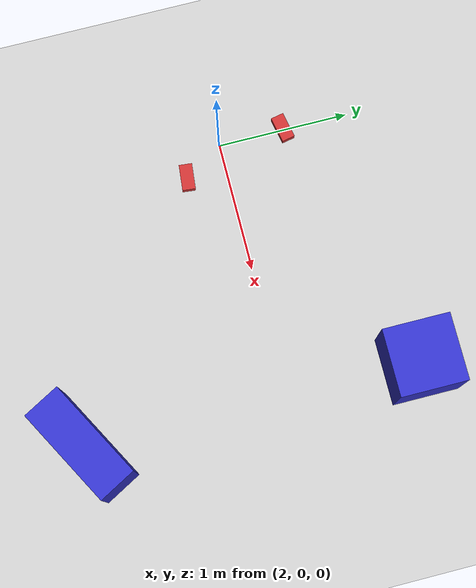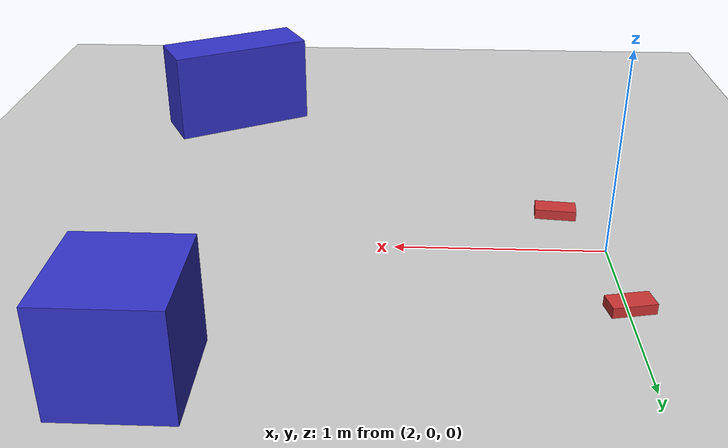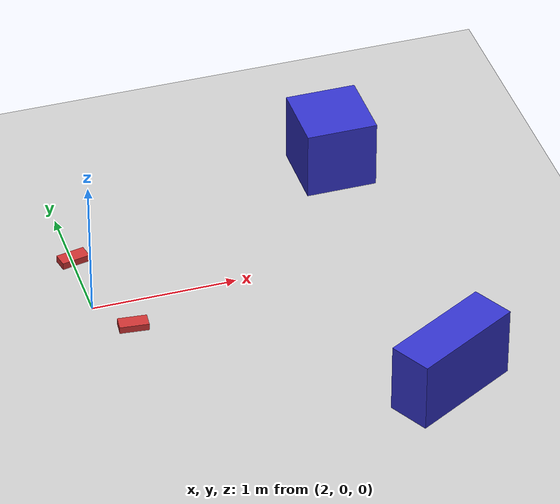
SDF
<sdf version="1.6">
 <world name="hexapod_terrain_world">
  <include><uri>model://sun</uri></include>
  <include><uri>model://ground_plane</uri></include>
  <model name="brick_1">
   <static>true</static>
   <pose>2.0 0.5 0.05 0 0 0.2</pose>
   <link name="link">
    <collision name="collision"><geometry><box><size>0.2 0.1 0.05</size></box></geometry></collision>
    <visual name="visual">
     <geometry><box><size>0.2 0.1 0.05</size></box></geometry>
     <material><ambient>0.8 0.2 0.2 1</ambient></material>
    </visual>
   </link>
  </model>
  <model name="brick_2">
   <static>true</static>
   <pose>2.2 -0.3 0.05 0 0 -0.1</pose>
   <link name="link">
    <collision name="collision"><geometry><box><size>0.2 0.1 0.05</size></box></geometry></collision>
    <visual name="visual">
     <geometry><box><size>0.2 0.1 0.05</size></box></geometry>
     <material><ambient>0.8 0.2 0.2 1</ambient></material>
    </visual>
   </link>
  </model>
  <model name="large_box_1">
   <static>true</static>
   <pose>4.0 1.0 0.25 0 0 0</pose>
   <link name="link">
    <collision name="collision"><geometry><box><size>0.5 0.5 0.5</size></box></geometry></collision>
    <visual name="visual">
     <geometry><box><size>0.5 0.5 0.5</size></box></geometry>
     <material><ambient>0.2 0.2 0.8 1</ambient></material>
    </visual>
   </link>
  </model>
  <model name="large_box_2">
   <static>true</static>
   <pose>4.0 -1.5 0.25 0 0 0.5</pose>
   <link name="link">
    <collision name="collision"><geometry><box><size>0.8 0.3 0.5</size></box></geometry></collision>
    <visual name="visual">
     <geometry><box><size>0.8 0.3 0.5</size></box></geometry>
     <material><ambient>0.2 0.2 0.8 1</ambient></material>
    </visual>
   </link>
  </model>
  <physics type="ode">
   <real_time_update_rate>1000.0</real_time_update_rate>
   <max_step_size>0.001</max_step_size>
   <ode><solver><type>quick</type><iters>50</iters></solver></ode>
  </physics>
 </world>
</sdf>
